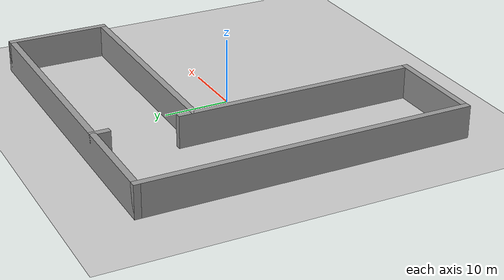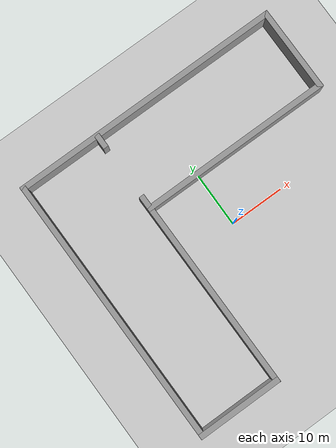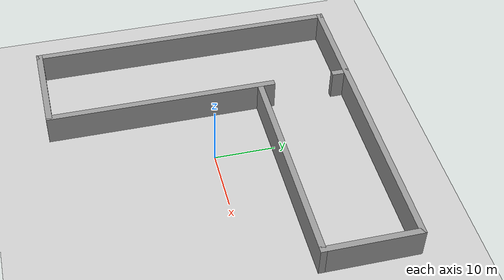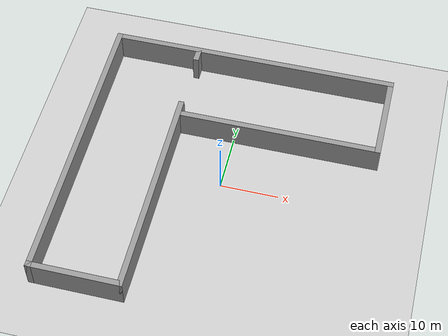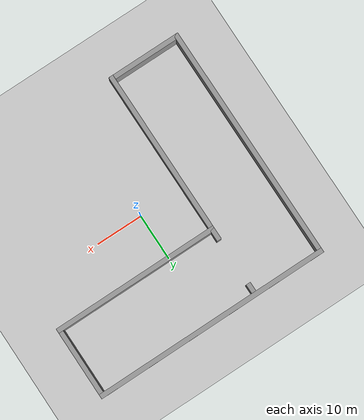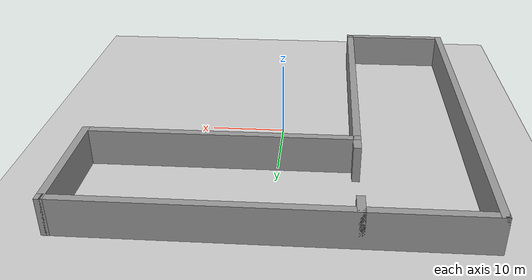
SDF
<?xml version="1.0"?>

<sdf version="1.6">
	<world name="default">
		<include>
			<uri>model://sun</uri>
			<pose>0 0 250  0 0 0</pose>
		</include>

		<include>
			<uri>model://ground_plane</uri>
		</include>

		<include>
			<uri>model://map3</uri>
			<name>map3</name>
			<pose>0 0 0  0 0 0</pose>
		</include>

	</world>
</sdf>

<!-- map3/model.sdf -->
<sdf version='1.7'>
  <model name='map3'>
    <pose>-1e-06 0 0 0 -0 0</pose>
    <link name='Wall_12'>
      <collision name='Wall_12_Collision'>
        <geometry>
          <box>
            <size>51 1 5</size>
          </box>
        </geometry>
        <pose>0 0 2.5 0 -0 0</pose>
      </collision>
      <visual name='Wall_12_Visual'>
        <pose>0 0 2.5 0 -0 0</pose>
        <geometry>
          <box>
            <size>51 1 5</size>
          </box>
        </geometry>
        <material>
          <script>
            <uri>file://media/materials/scripts/gazebo.material</uri>
            <name>Gazebo/Grey</name>
          </script>
          <ambient>1 1 1 1</ambient>
        </material>
        <meta>
          <layer>0</layer>
        </meta>
      </visual>
      <pose>-25 0 0 0 -0 -1.5708</pose>
    </link>
    <link name='Wall_14'>
      <collision name='Wall_14_Collision'>
        <geometry>
          <box>
            <size>51 1 5</size>
          </box>
        </geometry>
        <pose>0 0 2.5 0 -0 0</pose>
      </collision>
      <visual name='Wall_14_Visual'>
        <pose>0 0 2.5 0 -0 0</pose>
        <geometry>
          <box>
            <size>51 1 5</size>
          </box>
        </geometry>
        <material>
          <script>
            <uri>file://media/materials/scripts/gazebo.material</uri>
            <name>Gazebo/Grey</name>
          </script>
          <ambient>1 1 1 1</ambient>
        </material>
        <meta>
          <layer>0</layer>
        </meta>
      </visual>
      <pose>1e-06 25 0 0 -0 0</pose>
    </link>
    <link name='Wall_16'>
      <collision name='Wall_16_Collision'>
        <geometry>
          <box>
            <size>16 1 5</size>
          </box>
        </geometry>
        <pose>0 0 2.5 0 -0 0</pose>
      </collision>
      <visual name='Wall_16_Visual'>
        <pose>0 0 2.5 0 -0 0</pose>
        <geometry>
          <box>
            <size>16 1 5</size>
          </box>
        </geometry>
        <material>
          <script>
            <uri>file://media/materials/scripts/gazebo.material</uri>
            <name>Gazebo/Grey</name>
          </script>
          <ambient>1 1 1 1</ambient>
        </material>
        <meta>
          <layer>0</layer>
        </meta>
      </visual>
      <pose>25 17.5 0 0 -0 -1.5708</pose>
    </link>
    <link name='Wall_18'>
      <collision name='Wall_18_Collision'>
        <geometry>
          <box>
            <size>16 1 5</size>
          </box>
        </geometry>
        <pose>0 0 2.5 0 -0 0</pose>
      </collision>
      <visual name='Wall_18_Visual'>
        <pose>0 0 2.5 0 -0 0</pose>
        <geometry>
          <box>
            <size>16 1 5</size>
          </box>
        </geometry>
        <material>
          <script>
            <uri>file://media/materials/scripts/gazebo.material</uri>
            <name>Gazebo/Grey</name>
          </script>
          <ambient>1 1 1 1</ambient>
        </material>
        <meta>
          <layer>0</layer>
        </meta>
      </visual>
      <pose>-17.5 -25 0 0 -0 0</pose>
    </link>
    <link name='Wall_68'>
      <collision name='Wall_68_Collision'>
        <geometry>
          <box>
            <size>38 1 5</size>
          </box>
        </geometry>
        <pose>0 0 2.5 0 -0 0</pose>
      </collision>
      <visual name='Wall_68_Visual'>
        <pose>0 0 2.5 0 -0 0</pose>
        <geometry>
          <box>
            <size>38 1 5</size>
          </box>
        </geometry>
        <material>
          <script>
            <uri>file://media/materials/scripts/gazebo.material</uri>
            <name>Gazebo/Grey</name>
          </script>
          <ambient>1 1 1 1</ambient>
        </material>
        <meta>
          <layer>0</layer>
        </meta>
      </visual>
      <pose>-10 -6.5 0 0 -0 1.5708</pose>
    </link>
    <link name='Wall_70'>
      <collision name='Wall_70_Collision'>
        <geometry>
          <box>
            <size>36 1 5</size>
          </box>
        </geometry>
        <pose>0 0 2.5 0 -0 0</pose>
      </collision>
      <visual name='Wall_70_Visual'>
        <pose>0 0 2.5 0 -0 0</pose>
        <geometry>
          <box>
            <size>36 1 5</size>
          </box>
        </geometry>
        <material>
          <script>
            <uri>file://media/materials/scripts/gazebo.material</uri>
            <name>Gazebo/Grey</name>
          </script>
          <ambient>1 1 1 1</ambient>
        </material>
        <meta>
          <layer>0</layer>
        </meta>
      </visual>
      <pose>7.5 10 0 0 -0 3.14159</pose>
    </link>
    <link name='Wall_72'>
      <collision name='Wall_72_Collision'>
        <geometry>
          <box>
            <size>3 1 5</size>
          </box>
        </geometry>
        <pose>0 0 2.5 0 -0 0</pose>
      </collision>
      <visual name='Wall_72_Visual'>
        <pose>0 0 2.5 0 -0 0</pose>
        <geometry>
          <box>
            <size>3 1 5</size>
          </box>
        </geometry>
        <material>
          <script>
            <uri>file://media/materials/scripts/gazebo.material</uri>
            <name>Gazebo/Grey</name>
          </script>
          <ambient>1 1 1 1</ambient>
        </material>
        <meta>
          <layer>0</layer>
        </meta>
      </visual>
      <pose>-10 24 0 0 -0 -1.5708</pose>
    </link>
    <static>1</static>
  </model>
</sdf>
